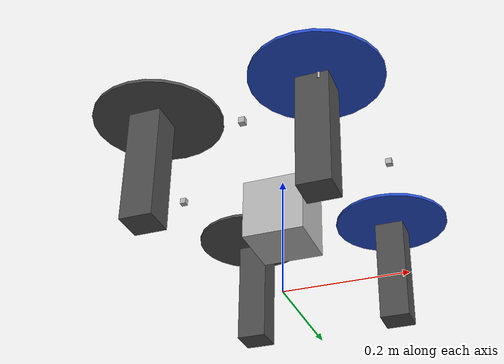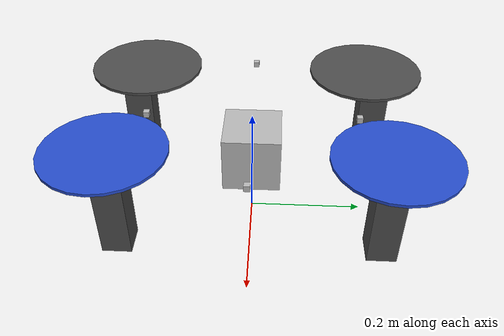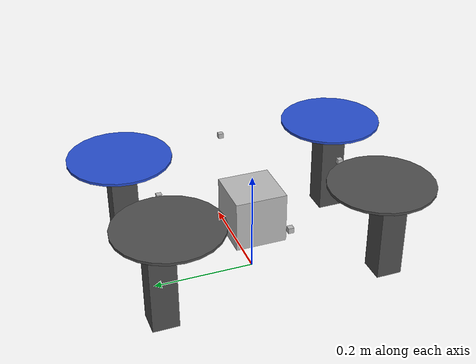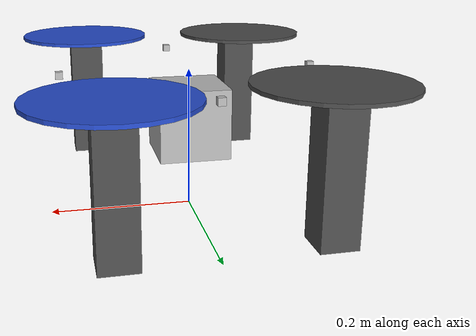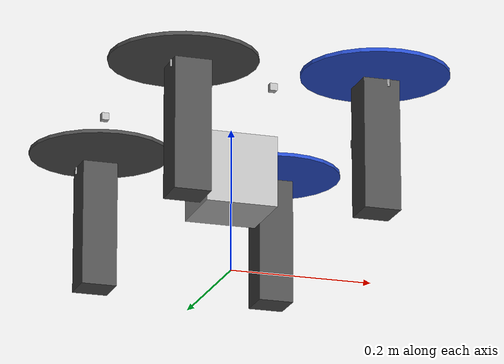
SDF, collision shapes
<?xml version='1.0'?>
	<sdf version="1.6" >
	<model name="drone_artemis">
		<include>
			<uri>model://iris_base</uri>
		</include>

		<!-- Sonar Sensor -->
		<link name="ultrasonic_1">
			<pose>0.18 0 .2 0 0 0</pose>
			<collision name="sonar_collision">
				<geometry>
					<box>
						<size>.01 .01 .01</size>
					</box>
				</geometry>
			</collision>
			<visual name="visual">
				<geometry>
					<box>
						<size>0.01 0.01 0.01</size>
					</box>
				</geometry>
			</visual>
			<inertial>
				<mass>0.1</mass>
				<inertia>
					<ixx>0.001</ixx>
					<ixy>0</ixy>
					<ixz>0</ixz>
					<iyy>0.001</iyy>
					<iyz>0</iyz>
					<izz>0.001</izz>
				</inertia>
			</inertial>
			<sensor type="ray" name="sonar_sensor">
				<visualize>true</visualize>
				<update_rate>10</update_rate>
				<ray>
					<scan>
						<horizontal>
							<samples>10</samples>
							<resolution>1</resolution>
							<min_angle>-0.18326</min_angle>
							<max_angle>0.18326</max_angle>
						</horizontal>
						<vertical>
							<samples>10</samples>
							<resolution>1</resolution>
							<min_angle>-0.034907</min_angle>
							<max_angle>0.034907</max_angle>
						</vertical>
					</scan>
					<range>
						<min>0.02</min>
						<max>4</max>
						<resolution>0.3</resolution>
					</range>
				</ray>
				<plugin filename="libgazebo_ros_range.so" name="gazebo_ros_range">
					<gaussianNoise>0.005</gaussianNoise>
					<alwaysOn>true</alwaysOn>
					<updateRate>50</updateRate>
					<topicName>distance_sensor/1</topicName>
					<frameName>ultrasonic_1</frameName>
					<radiation>ULTRASONIC</radiation>
					<fov>0.366519</fov>
				</plugin>
			</sensor>
		</link>
		<joint type="fixed" name="joint_ultrasonic_1">
			<pose>0 0 0 0 0 0</pose>
			<parent>iris::base_link</parent>
			<child>ultrasonic_1</child>
			<axis>
				<limit>
					<lower>0</lower>
					<upper>0</upper>
				</limit>
				<xyz>0 0 1</xyz>
				<use_parent_model_frame>true</use_parent_model_frame>
			</axis>
		</joint>

			<!-- Sonar Sensor -->
		<link name="ultrasonic_2">
			<pose>0.14 -0.24 .2 0 0 -0.785</pose>
			<collision name="sonar_collision">
				<geometry>
					<box>
						<size>.01 .01 .01</size>
					</box>
				</geometry>
			</collision>
			<visual name="visual">
				<geometry>
					<box>
						<size>0.01 0.01 0.01</size>
					</box>
				</geometry>
			</visual>
			<inertial>
				<mass>0.1</mass>
				<inertia>
					<ixx>0.001</ixx>
					<ixy>0</ixy>
					<ixz>0</ixz>
					<iyy>0.001</iyy>
					<iyz>0</iyz>
					<izz>0.001</izz>
				</inertia>
			</inertial>
			<sensor type="ray" name="sonar_sensor">
				<visualize>true</visualize>
				<update_rate>10</update_rate>
				<ray>
					<scan>
						<horizontal>
							<samples>10</samples>
							<resolution>1</resolution>
							<min_angle>-0.18326</min_angle>
							<max_angle>0.18326</max_angle>
						</horizontal>
						<vertical>
							<samples>10</samples>
							<resolution>1</resolution>
							<min_angle>-0.034907</min_angle>
							<max_angle>0.034907</max_angle>
						</vertical>
					</scan>
					<range>
						<min>0.02</min>
						<max>4</max>
						<resolution>0.3</resolution>
					</range>
				</ray>
				<plugin filename="libgazebo_ros_range.so" name="gazebo_ros_range">
					<gaussianNoise>0.005</gaussianNoise>
					<alwaysOn>true</alwaysOn>
					<updateRate>50</updateRate>
					<topicName>distance_sensor/2</topicName>
					<frameName>ultrasonic_2</frameName>
					<radiation>ULTRASONIC</radiation>
					<fov>0.366519</fov>
				</plugin>
			</sensor>
		</link>
		<joint type="fixed" name="joint_ultrasonic_2">
			<pose>0 0 0 0 0 0</pose>
			<parent>iris::base_link</parent>
			<child>ultrasonic_2</child>
			<axis>
				<limit>
					<lower>0</lower>
					<upper>0</upper>
				</limit>
				<xyz>0 0 1</xyz>
				<use_parent_model_frame>true</use_parent_model_frame>
			</axis>
		</joint>

			<!-- Sonar Sensor -->
		<link name="ultrasonic_3">
			<pose>0 -0.18 .2 0 0 -1.57</pose>
			<collision name="sonar_collision">
				<geometry>
					<box>
						<size>.01 .01 .01</size>
					</box>
				</geometry>
			</collision>
			<visual name="visual">
				<geometry>
					<box>
						<size>0.01 0.01 0.01</size>
					</box>
				</geometry>
			</visual>
			<inertial>
				<mass>0.1</mass>
				<inertia>
					<ixx>0.001</ixx>
					<ixy>0</ixy>
					<ixz>0</ixz>
					<iyy>0.001</iyy>
					<iyz>0</iyz>
					<izz>0.001</izz>
				</inertia>
			</inertial>
			<sensor type="ray" name="sonar_sensor">
				<visualize>true</visualize>
				<update_rate>10</update_rate>
				<ray>
					<scan>
						<horizontal>
							<samples>10</samples>
							<resolution>1</resolution>
							<min_angle>-0.18326</min_angle>
							<max_angle>0.18326</max_angle>
						</horizontal>
						<vertical>
							<samples>10</samples>
							<resolution>1</resolution>
							<min_angle>-0.034907</min_angle>
							<max_angle>0.034907</max_angle>
						</vertical>
					</scan>
					<range>
						<min>0.02</min>
						<max>4</max>
						<resolution>0.3</resolution>
					</range>
				</ray>
				<plugin filename="libgazebo_ros_range.so" name="gazebo_ros_range">
					<gaussianNoise>0.005</gaussianNoise>
					<alwaysOn>true</alwaysOn>
					<updateRate>50</updateRate>
					<topicName>distance_sensor/3</topicName>
					<frameName>ultrasonic_3</frameName>
					<radiation>ULTRASONIC</radiation>
					<fov>0.366519</fov>
				</plugin>
			</sensor>
		</link>
		<joint type="fixed" name="joint_ultrasonic_3">
			<pose>0 0 0 0 0 0</pose>
			<parent>iris::base_link</parent>
			<child>ultrasonic_3</child>
			<axis>
				<limit>
					<lower>0</lower>
					<upper>0</upper>
				</limit>
				<xyz>0 0 1</xyz>
				<use_parent_model_frame>true</use_parent_model_frame>
			</axis>
		</joint>

			<!-- Sonar Sensor -->
		<link name="ultrasonic_4">
			<pose>-0.15 -0.23 .2 0 0 -2.355</pose>
			<collision name="sonar_collision">
				<geometry>
					<box>
						<size>.01 .01 .01</size>
					</box>
				</geometry>
			</collision>
			<visual name="visual">
				<geometry>
					<box>
						<size>0.01 0.01 0.01</size>
					</box>
				</geometry>
			</visual>
			<inertial>
				<mass>0.1</mass>
				<inertia>
					<ixx>0.001</ixx>
					<ixy>0</ixy>
					<ixz>0</ixz>
					<iyy>0.001</iyy>
					<iyz>0</iyz>
					<izz>0.001</izz>
				</inertia>
			</inertial>
			<sensor type="ray" name="sonar_sensor">
				<visualize>true</visualize>
				<update_rate>10</update_rate>
				<ray>
					<scan>
						<horizontal>
							<samples>10</samples>
							<resolution>1</resolution>
							<min_angle>-0.18326</min_angle>
							<max_angle>0.18326</max_angle>
						</horizontal>
						<vertical>
							<samples>10</samples>
							<resolution>1</resolution>
							<min_angle>-0.034907</min_angle>
							<max_angle>0.034907</max_angle>
						</vertical>
					</scan>
					<range>
						<min>0.02</min>
						<max>4</max>
						<resolution>0.3</resolution>
					</range>
				</ray>
				<plugin filename="libgazebo_ros_range.so" name="gazebo_ros_range">
					<gaussianNoise>0.005</gaussianNoise>
					<alwaysOn>true</alwaysOn>
					<updateRate>50</updateRate>
					<topicName>distance_sensor/4</topicName>
					<frameName>ultrasonic_4</frameName>
					<radiation>ULTRASONIC</radiation>
					<fov>0.366519</fov>
				</plugin>
			</sensor>
		</link>
		<joint type="fixed" name="joint_ultrasonic_4">
			<pose>0 0 0 0 0 0</pose>
			<parent>iris::base_link</parent>
			<child>ultrasonic_4</child>
			<axis>
				<limit>
					<lower>0</lower>
					<upper>0</upper>
				</limit>
				<xyz>0 0 1</xyz>
				<use_parent_model_frame>true</use_parent_model_frame>
			</axis>
		</joint>

			<!-- Sonar Sensor -->
		<link name="ultrasonic_5">
			<pose>-0.18 0 0.2 0 0 3.14</pose>
			<collision name="sonar_collision">
				<geometry>
					<box>
						<size>.01 .01 .01</size>
					</box>
				</geometry>
			</collision>
			<visual name="visual">
				<geometry>
					<box>
						<size>0.01 0.01 0.01</size>
					</box>
				</geometry>
			</visual>
			<inertial>
				<mass>0.1</mass>
				<inertia>
					<ixx>0.001</ixx>
					<ixy>0</ixy>
					<ixz>0</ixz>
					<iyy>0.001</iyy>
					<iyz>0</iyz>
					<izz>0.001</izz>
				</inertia>
			</inertial>
			<sensor type="ray" name="sonar_sensor">
				<visualize>true</visualize>
				<update_rate>10</update_rate>
				<ray>
					<scan>
						<horizontal>
							<samples>10</samples>
							<resolution>1</resolution>
							<min_angle>-0.18326</min_angle>
							<max_angle>0.18326</max_angle>
						</horizontal>
						<vertical>
							<samples>10</samples>
							<resolution>1</resolution>
							<min_angle>-0.034907</min_angle>
							<max_angle>0.034907</max_angle>
						</vertical>
					</scan>
					<range>
						<min>0.02</min>
						<max>4</max>
						<resolution>0.3</resolution>
					</range>
				</ray>
				<plugin filename="libgazebo_ros_range.so" name="gazebo_ros_range">
					<gaussianNoise>0.005</gaussianNoise>
					<alwaysOn>true</alwaysOn>
					<updateRate>50</updateRate>
					<topicName>distance_sensor/5</topicName>
					<frameName>ultrasonic_5</frameName>
					<radiation>ULTRASONIC</radiation>
					<fov>0.366519</fov>
				</plugin>
			</sensor>
		</link>
		<joint type="fixed" name="joint_ultrasonic_5">
			<pose>0 0 0 0 0 0</pose>
			<parent>iris::base_link</parent>
			<child>ultrasonic_5</child>
			<axis>
				<limit>
					<lower>0</lower>
					<upper>0</upper>
				</limit>
				<xyz>0 0 1</xyz>
				<use_parent_model_frame>true</use_parent_model_frame>
			</axis>
		</joint>

			<!-- Sonar Sensor -->
		<link name="ultrasonic_6">
			<pose>-0.15 0.23 .2 0 0 2.355</pose>
			<collision name="sonar_collision">
				<geometry>
					<box>
						<size>.01 .01 .01</size>
					</box>
				</geometry>
			</collision>
			<visual name="visual">
				<geometry>
					<box>
						<size>0.01 0.01 0.01</size>
					</box>
				</geometry>
			</visual>
			<inertial>
				<mass>0.1</mass>
				<inertia>
					<ixx>0.001</ixx>
					<ixy>0</ixy>
					<ixz>0</ixz>
					<iyy>0.001</iyy>
					<iyz>0</iyz>
					<izz>0.001</izz>
				</inertia>
			</inertial>
			<sensor type="ray" name="sonar_sensor">
				<visualize>true</visualize>
				<update_rate>10</update_rate>
				<ray>
					<scan>
						<horizontal>
							<samples>10</samples>
							<resolution>1</resolution>
							<min_angle>-0.18326</min_angle>
							<max_angle>0.18326</max_angle>
						</horizontal>
						<vertical>
							<samples>10</samples>
							<resolution>1</resolution>
							<min_angle>-0.034907</min_angle>
							<max_angle>0.034907</max_angle>
						</vertical>
					</scan>
					<range>
						<min>0.02</min>
						<max>4</max>
						<resolution>0.3</resolution>
					</range>
				</ray>
				<plugin filename="libgazebo_ros_range.so" name="gazebo_ros_range">
					<gaussianNoise>0.005</gaussianNoise>
					<alwaysOn>true</alwaysOn>
					<updateRate>50</updateRate>
					<topicName>distance_sensor/6</topicName>
					<frameName>ultrasonic_6</frameName>
					<radiation>ULTRASONIC</radiation>
					<fov>0.366519</fov>
				</plugin>
			</sensor>
		</link>
		<joint type="fixed" name="joint_ultrasonic_6">
			<pose>0 0 0 0 0 0</pose>
			<parent>iris::base_link</parent>
			<child>ultrasonic_6</child>
			<axis>
				<limit>
					<lower>0</lower>
					<upper>0</upper>
				</limit>
				<xyz>0 0 1</xyz>
				<use_parent_model_frame>true</use_parent_model_frame>
			</axis>
		</joint>

			<!-- Sonar Sensor -->
		<link name="ultrasonic_7">
			<pose>0 0.18 .2 0 0 1.57</pose>
			<collision name="sonar_collision">
				<geometry>
					<box>
						<size>.01 .01 .01</size>
					</box>
				</geometry>
			</collision>
			<visual name="visual">
				<geometry>
					<box>
						<size>0.01 0.01 0.01</size>
					</box>
				</geometry>
			</visual>
			<inertial>
				<mass>0.1</mass>
				<inertia>
					<ixx>0.001</ixx>
					<ixy>0</ixy>
					<ixz>0</ixz>
					<iyy>0.001</iyy>
					<iyz>0</iyz>
					<izz>0.001</izz>
				</inertia>
			</inertial>
			<sensor type="ray" name="sonar_sensor">
				<visualize>true</visualize>
				<update_rate>10</update_rate>
				<ray>
					<scan>
						<horizontal>
							<samples>10</samples>
							<resolution>1</resolution>
							<min_angle>-0.18326</min_angle>
							<max_angle>0.18326</max_angle>
						</horizontal>
						<vertical>
							<samples>10</samples>
							<resolution>1</resolution>
							<min_angle>-0.034907</min_angle>
							<max_angle>0.034907</max_angle>
						</vertical>
					</scan>
					<range>
						<min>0.02</min>
						<max>4</max>
						<resolution>0.3</resolution>
					</range>
				</ray>
				<plugin filename="libgazebo_ros_range.so" name="gazebo_ros_range">
					<gaussianNoise>0.005</gaussianNoise>
					<alwaysOn>true</alwaysOn>
					<updateRate>50</updateRate>
					<topicName>distance_sensor/7</topicName>
					<frameName>ultrasonic_7</frameName>
					<radiation>ULTRASONIC</radiation>
					<fov>0.366519</fov>
				</plugin>
			</sensor>
		</link>
		<joint type="fixed" name="joint_ultrasonic_7">
			<pose>0 0 0 0 0 0</pose>
			<parent>iris::base_link</parent>
			<child>ultrasonic_7</child>
			<axis>
				<limit>
					<lower>0</lower>
					<upper>0</upper>
				</limit>
				<xyz>0 0 1</xyz>
				<use_parent_model_frame>true</use_parent_model_frame>
			</axis>
		</joint>

			<!-- Sonar Sensor -->
		<link name="ultrasonic_8">
			<pose>0.14 0.24 .2 0 0 0.785</pose>
			<collision name="sonar_collision">
				<geometry>
					<box>
						<size>.01 .01 .01</size>
					</box>
				</geometry>
			</collision>
			<visual name="visual">
				<geometry>
					<box>
						<size>0.01 0.01 0.01</size>
					</box>
				</geometry>
			</visual>
			<inertial>
				<mass>0.1</mass>
				<inertia>
					<ixx>0.001</ixx>
					<ixy>0</ixy>
					<ixz>0</ixz>
					<iyy>0.001</iyy>
					<iyz>0</iyz>
					<izz>0.001</izz>
				</inertia>
			</inertial>
			<sensor type="ray" name="sonar_sensor">
				<visualize>true</visualize>
				<update_rate>10</update_rate>
				<ray>
					<scan>
						<horizontal>
							<samples>10</samples>
							<resolution>1</resolution>
							<min_angle>-0.18326</min_angle>
							<max_angle>0.18326</max_angle>
						</horizontal>
						<vertical>
							<samples>10</samples>
							<resolution>1</resolution>
							<min_angle>-0.034907</min_angle>
							<max_angle>0.034907</max_angle>
						</vertical>
					</scan>
					<range>
						<min>0.02</min>
						<max>4</max>
						<resolution>0.3</resolution>
					</range>
				</ray>
				<plugin filename="libgazebo_ros_range.so" name="gazebo_ros_range">
						<gaussianNoise>0.005</gaussianNoise>
						<alwaysOn>true</alwaysOn>
						<updateRate>50</updateRate>
						<topicName>distance_sensor/8</topicName>
						<frameName>ultrasonic_8</frameName>
						<radiation>ULTRASONIC</radiation>
						<fov>0.366519</fov>
				</plugin>
			</sensor>
		</link>
		<joint type="fixed" name="joint_ultrasonic_8">
			<pose>0 0 0 0 0 0</pose>
			<parent>iris::base_link</parent>
			<child>ultrasonic_8</child>
			<axis>
				<limit>
					<lower>0</lower>
					<upper>0</upper>
				</limit>
				<xyz>0 0 1</xyz>
				<use_parent_model_frame>true</use_parent_model_frame>
			</axis>
		</joint>

			<!--RGB Camera-->
		<link name="rgb_camera">
			<pose>0.1 0 0.15 0 0.785 0 </pose>
			<visual name="visual">
				<geometry>
					<box>
						<size>0.01 0.01 0.01</size>
					</box>
				</geometry>
			</visual>
			<inertial>
				<mass>0.1</mass>
				<inertia>
					<ixx>0.001</ixx>
					<ixy>0</ixy>
					<ixz>0</ixz>
					<iyy>0.001</iyy>
					<iyz>0</iyz>
					<izz>0.001</izz>
				</inertia>
			</inertial>
			<sensor name="rgb_cam" type="camera" >
				<camera>
					<horizontal_fov>1.2</horizontal_fov>
					<image>
						<width>640</width>
						<height>480</height>
					</image>
					<clip>
						<near>0.1</near>
						<far>1000</far>
					</clip>
				</camera>
				<always_on>1</always_on>
				<update_rate>30</update_rate>
				<visualize>true</visualize>
				<plugin name="camera_controller" filename="libgazebo_ros_camera.so">
					<always_on>true</always_on>
					<update_rate>30</update_rate>
					<cameraName>rgb_cam</cameraName>
					<imageTopicName>image_raw</imageTopicName>
					<cameraInfoTopicName>rgb_camera_info</cameraInfoTopicName>
					<frameName>rgb_camera_link</frameName>
				</plugin>
			</sensor>
		</link>
		<joint name="camera_mount" type="fixed">
			<pose>0 0 0 0 0 0</pose>
			<parent>iris::base_link</parent>
			<child>rgb_camera</child>
			<axis>
				<limit>
					<lower>0</lower>
					<upper>0</upper>
				</limit>
				<xyz>0 0 1</xyz>
				<use_parent_model_frame>true</use_parent_model_frame>
			</axis>
		</joint>

		<!-- Stereo camera -->
		<link name='stereo_camera'>
			<pose>0.1 0 .3 0 0 0</pose>
			<visual name="visual">
				<geometry>
					<box>
						<size>0.01 0.07 0.01</size>
					</box>
				</geometry>
			</visual>
			<inertial>
				<mass>0.1</mass>
				<inertia>
					<ixx>0.001</ixx>
					<ixy>0</ixy>
					<ixz>0</ixz>
					<iyy>0.001</iyy>
					<iyz>0</iyz>
					<izz>0.001</izz>
				</inertia>
			</inertial>
			<sensor type="multicamera" name="stereo_camera">
				<update_rate>30.0</update_rate>
				<camera name="left">
					<pose>0 0.035 0 0 0 0</pose>
					<horizontal_fov>1.3962634</horizontal_fov>
					<image>
						<width>640</width>
						<height>480</height>
						<format>R8G8B8</format>
					</image>
					<clip>
						<near>0.02</near>
						<far>300</far>
					</clip>
				</camera>
				<camera name="right">
					<pose>0 -0.035 0 0 0 0</pose>
					<horizontal_fov>1.3962634</horizontal_fov>
					<image>
						<width>640</width>
						<height>480</height>
						<format>R8G8B8</format>
					</image>
					<clip>
						<near>0.02</near>
						<far>300</far>
					</clip>
				</camera>
				<plugin name="stereo_camera_controller" filename="libgazebo_ros_multicamera.so">
					<alwaysOn>true</alwaysOn>
					<updateRate>0.0</updateRate>
					<cameraName>multisense_sl/camera</cameraName>
					<imageTopicName>image_raw</imageTopicName>
					<cameraInfoTopicName>camera_info</cameraInfoTopicName>
					<frameName>left_camera_optical_frame</frameName>
				</plugin>
			</sensor>
		</link>
		<joint name="stereo_camera_joint" type="fixed">
			<pose>0 0 0 0 0 0</pose>
			<parent>iris::base_link</parent>
			<child>stereo_camera</child>
			<axis>
				<limit>
					<lower>0</lower>
					<upper>0</upper>
				</limit>
				<xyz>0 0 1</xyz>
				<use_parent_model_frame>true</use_parent_model_frame>
			</axis>
		</joint>

		<!--Lidar-->
		<link name="lidar_link">
			<pose>0 0 0.13 0 1.57 0</pose>
			<collision name="lidar_collision">
				<geometry>
					<box>
						<size>0.1 0.1 0.1</size>
					</box>
				</geometry>
			</collision>
			<visual name="visual">
				<geometry>
					<box>
						<size>0.01 0.01 0.01</size>
					</box>
				</geometry>
			</visual>
			<inertial>
				<mass>0.1</mass>
				<inertia>
					<ixx>0.001</ixx>
					<ixy>0</ixy>
					<ixz>0</ixz>
					<iyy>0.001</iyy>
					<iyz>0</iyz>
					<izz>0.001</izz>
				</inertia>
			</inertial>
			<sensor type="ray" name="laser">
				<visualize>true</visualize>
				<update_rate>10</update_rate>
				<ray>
					<scan>
						<horizontal>
							<samples>1</samples>
							<resolution>1</resolution>
							<min_angle>-0.017453</min_angle>
							<max_angle>0.017453</max_angle>
						</horizontal>
					</scan>
					<range>
						<min>0.1</min>
						<max>8</max>
						<resolution>0.01</resolution>
					</range>
				</ray>
				<plugin name="lidar_node" filename="libgazebo_ros_laser.so">
					<topicName>/spur/laser/scan</topicName>
					<frameName>/lidar_sensor_link</frameName>
				</plugin>
			</sensor>
		</link>
		<joint type="fixed" name="lidar_joint">
			<pose>0 0 0 0 0 0</pose>
			<parent>iris::base_link</parent>
			<child>lidar_link</child>
			<axis>
				<limit>
					<lower>0</lower>
					<upper>0</upper>
				</limit>
				<xyz>0 0 1</xyz>
				<use_parent_model_frame>true</use_parent_model_frame>
			</axis>
		</joint>

		<!-- plugins -->
		<plugin name="rotor_0_blade_1" filename="libLiftDragPlugin.so">
		<a0>0.3</a0>
		<alpha_stall>1.4</alpha_stall>
		<cla>4.2500</cla>
		<cda>0.10</cda>
		<cma>0.00</cma>
		<cla_stall>-0.025</cla_stall>
		<cda_stall>0.0</cda_stall>
		<cma_stall>0.0</cma_stall>
		<area>0.002</area>
		<air_density>1.2041</air_density>
		<cp>0.084 0 0</cp>
		<forward>0 1 0</forward>
		<upward>0 0 1</upward>
		<link_name>iris::rotor_0</link_name>
		</plugin>
		<plugin name="rotor_0_blade_2" filename="libLiftDragPlugin.so">
		<a0>0.3</a0>
		<alpha_stall>1.4</alpha_stall>
		<cla>4.2500</cla>
		<cda>0.10</cda>
		<cma>0.00</cma>
		<cla_stall>-0.025</cla_stall>
		<cda_stall>0.0</cda_stall>
		<cma_stall>0.0</cma_stall>
		<area>0.002</area>
		<air_density>1.2041</air_density>
		<cp>-0.084 0 0</cp>
		<forward>0 -1 0</forward>
		<upward>0 0 1</upward>
		<link_name>iris::rotor_0</link_name>
		</plugin>

		<plugin name="rotor_1_blade_1" filename="libLiftDragPlugin.so">
		<a0>0.3</a0>
		<alpha_stall>1.4</alpha_stall>
		<cla>4.2500</cla>
		<cda>0.10</cda>
		<cma>0.00</cma>
		<cla_stall>-0.025</cla_stall>
		<cda_stall>0.0</cda_stall>
		<cma_stall>0.0</cma_stall>
		<area>0.002</area>
		<air_density>1.2041</air_density>
		<cp>0.084 0 0</cp>
		<forward>0 1 0</forward>
		<upward>0 0 1</upward>
		<link_name>iris::rotor_1</link_name>
		</plugin>
		<plugin name="rotor_1_blade_2" filename="libLiftDragPlugin.so">
		<a0>0.3</a0>
		<alpha_stall>1.4</alpha_stall>
		<cla>4.2500</cla>
		<cda>0.10</cda>
		<cma>0.00</cma>
		<cla_stall>-0.025</cla_stall>
		<cda_stall>0.0</cda_stall>
		<cma_stall>0.0</cma_stall>
		<area>0.002</area>
		<air_density>1.2041</air_density>
		<cp>-0.084 0 0</cp>
		<forward>0 -1 0</forward>
		<upward>0 0 1</upward>
		<link_name>iris::rotor_1</link_name>
		</plugin>

		<plugin name="rotor_2_blade_1" filename="libLiftDragPlugin.so">
		<a0>0.3</a0>
		<alpha_stall>1.4</alpha_stall>
		<cla>4.2500</cla>
		<cda>0.10</cda>
		<cma>0.00</cma>
		<cla_stall>-0.025</cla_stall>
		<cda_stall>0.0</cda_stall>
		<cma_stall>0.0</cma_stall>
		<area>0.002</area>
		<air_density>1.2041</air_density>
		<cp>0.084 0 0</cp>
		<forward>0 -1 0</forward>
		<upward>0 0 1</upward>
		<link_name>iris::rotor_2</link_name>
		</plugin>
		<plugin name="rotor_2_blade_2" filename="libLiftDragPlugin.so">
		<a0>0.3</a0>
		<alpha_stall>1.4</alpha_stall>
		<cla>4.2500</cla>
		<cda>0.10</cda>
		<cma>0.00</cma>
		<cla_stall>-0.025</cla_stall>
		<cda_stall>0.0</cda_stall>
		<cma_stall>0.0</cma_stall>
		<area>0.002</area>
		<air_density>1.2041</air_density>
		<cp>-0.084 0 0</cp>
		<forward>0 1 0</forward>
		<upward>0 0 1</upward>
		<link_name>iris::rotor_2</link_name>
		</plugin>

		<plugin name="rotor_3_blade_1" filename="libLiftDragPlugin.so">
		<a0>0.3</a0>
		<alpha_stall>1.4</alpha_stall>
		<cla>4.2500</cla>
		<cda>0.10</cda>
		<cma>0.00</cma>
		<cla_stall>-0.025</cla_stall>
		<cda_stall>0.0</cda_stall>
		<cma_stall>0.0</cma_stall>
		<area>0.002</area>
		<air_density>1.2041</air_density>
		<cp>0.084 0 0</cp>
		<forward>0 -1 0</forward>
		<upward>0 0 1</upward>
		<link_name>iris::rotor_3</link_name>
		</plugin>
		<plugin name="rotor_3_blade_2" filename="libLiftDragPlugin.so">
		<a0>0.3</a0>
		<alpha_stall>1.4</alpha_stall>
		<cla>4.2500</cla>
		<cda>0.10</cda>
		<cma>0.00</cma>
		<cla_stall>-0.025</cla_stall>
		<cda_stall>0.0</cda_stall>
		<cma_stall>0.0</cma_stall>
		<area>0.002</area>
		<air_density>1.2041</air_density>
		<cp>-0.084 0 0</cp>
		<forward>0 1 0</forward>
		<upward>0 0 1</upward>
		<link_name>iris::rotor_3</link_name>
		</plugin>
		<plugin name="arducopter_plugin" filename="libArduPilotPlugin.so">
		<fdm_addr>127.0.0.1</fdm_addr>
		<fdm_port_in>9002</fdm_port_in>
		<fdm_port_out>9003</fdm_port_out>
		<!--
			Require by APM :
			Only change model and gazebo from XYZ to XY-Z coordinates
		-->
		<modelXYZToAirplaneXForwardZDown>0 0 0 3.141593 0 0</modelXYZToAirplaneXForwardZDown>
		<gazeboXYZToNED>0 0 0 3.141593 0 0</gazeboXYZToNED>
		<imuName>iris::iris/imu_link::imu_sensor</imuName>
		<connectionTimeoutMaxCount>5</connectionTimeoutMaxCount>
		<control channel="0">
		<!--
			incoming control command [0, 1]
			so offset it by 0 to get [0, 1]
			and divide max target by 1.
			offset = 0
			multiplier = 838 max rpm / 1 = 838
			-->
			<type>VELOCITY</type>
			<offset>0</offset>
			<p_gain>0.20</p_gain>
			<i_gain>0</i_gain>
			<d_gain>0</d_gain>
			<i_max>0</i_max>
			<i_min>0</i_min>
			<cmd_max>2.5</cmd_max>
			<cmd_min>-2.5</cmd_min>
			<jointName>iris::rotor_0_joint</jointName>
			<multiplier>838</multiplier>
			<controlVelocitySlowdownSim>1</controlVelocitySlowdownSim>
		</control>
		<control channel="1">
			<type>VELOCITY</type>
			<offset>0</offset>
			<p_gain>0.20</p_gain>
			<i_gain>0</i_gain>
			<d_gain>0</d_gain>
			<i_max>0</i_max>
			<i_min>0</i_min>
			<cmd_max>2.5</cmd_max>
			<cmd_min>-2.5</cmd_min>
			<jointName>iris::rotor_1_joint</jointName>
			<multiplier>838</multiplier>
			<controlVelocitySlowdownSim>1</controlVelocitySlowdownSim>
		</control>
		<control channel="2">
			<type>VELOCITY</type>
			<offset>0</offset>
			<p_gain>0.20</p_gain>
			<i_gain>0</i_gain>
			<d_gain>0</d_gain>
			<i_max>0</i_max>
			<i_min>0</i_min>
			<cmd_max>2.5</cmd_max>
			<cmd_min>-2.5</cmd_min>
			<jointName>iris::rotor_2_joint</jointName>
			<multiplier>-838</multiplier>
			<controlVelocitySlowdownSim>1</controlVelocitySlowdownSim>
		</control>
		<control channel="3">
			<type>VELOCITY</type>
			<offset>0</offset>
			<p_gain>0.20</p_gain>
			<i_gain>0</i_gain>
			<d_gain>0</d_gain>
			<i_max>0</i_max>
			<i_min>0</i_min>
			<cmd_max>2.5</cmd_max>
			<cmd_min>-2.5</cmd_min>
			<jointName>iris::rotor_3_joint</jointName>
			<multiplier>-838</multiplier>
			<controlVelocitySlowdownSim>1</controlVelocitySlowdownSim>
		</control>
		</plugin>

	</model>
</sdf>

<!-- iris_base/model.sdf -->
<sdf version='1.6'>
  <model name='iris'>
    <pose>0 0 0.194923 0 0 0</pose>
    <link name='base_link'>
      <velocity_decay>
        <linear>0.0</linear>
        <angular>0.0</angular>
      </velocity_decay>
      <inertial>
        <pose>0 0 0 0 0 0</pose>
        <mass>1.5</mass>
        <inertia>
          <ixx>0.008</ixx>
          <ixy>0</ixy>
          <ixz>0</ixz>
          <iyy>0.015</iyy>
          <iyz>0</iyz>
          <izz>0.017</izz>
        </inertia>
      </inertial>
      <collision name='base_link_collision_fl'>
        <pose>0.13 0.22 -0.08 0 0 0</pose>
        <geometry>
          <box>
            <size>0.05 0.05 0.18</size>
          </box>
        </geometry>
        <surface>
          <contact>
            <ode>
              <max_vel>100.0</max_vel>
              <min_depth>0.001</min_depth>
            </ode>
          </contact>
          <friction>
            <ode>
              <mu>1.0</mu>
              <mu2>1.0</mu2>
            </ode>
          </friction>
        </surface>
      </collision>
      <collision name='base_link_collision_fr'>
        <pose>0.13 -0.22 -0.08 0 0 0</pose>
        <geometry>
          <box>
            <size>0.05 0.05 0.18</size>
          </box>
        </geometry>
        <surface>
          <contact>
            <ode>
              <max_vel>100.0</max_vel>
              <min_depth>0.001</min_depth>
            </ode>
          </contact>
          <friction>
            <ode>
              <mu>1.0</mu>
              <mu2>1.0</mu2>
            </ode>
          </friction>
        </surface>
      </collision>
      <collision name='base_link_collision_br'>
        <pose>-0.13 -0.22 -0.08 0 0 0</pose>
        <geometry>
          <box>
            <size>0.05 0.05 0.18</size>
          </box>
        </geometry>
        <surface>
          <contact>
            <ode>
              <max_vel>100.0</max_vel>
              <min_depth>0.001</min_depth>
            </ode>
          </contact>
          <friction>
            <ode>
              <mu>1.0</mu>
              <mu2>1.0</mu2>
            </ode>
          </friction>
        </surface>
      </collision>
      <collision name='base_link_collision_bl'>
        <pose>-0.13 0.22 -0.08 0 0 0</pose>
        <geometry>
          <box>
            <size>0.05 0.05 0.18</size>
          </box>
        </geometry>
        <surface>
          <contact>
            <ode>
              <max_vel>100.0</max_vel>
              <min_depth>0.001</min_depth>
            </ode>
          </contact>
          <friction>
            <ode>
              <mu>1.0</mu>
              <mu2>1.0</mu2>
            </ode>
          </friction>
        </surface>
      </collision>
      <visual name='base_link_visual'>
        <geometry>
          <mesh>
            <uri>model://iris_base/meshes/iris.dae</uri>
          </mesh>
        </geometry>
        <material>
          <script>
            <name>Gazebo/DarkGrey</name>
          </script>
        </material>
      </visual>

      <visual name='front_left_leg_visual'>
        <pose>0.123 0.22 -0.11 0 0 0</pose>
        <geometry>
          <cylinder>
            <radius>0.005</radius>
            <length>0.17</length>
          </cylinder>
        </geometry>
        <material>
          <script>
            <name>Gazebo/FlatBlack</name>
            <uri>file://media/materials/scripts/gazebo.material</uri>
          </script>
        </material>
      </visual>
      <visual name='front_right_leg_visual'>
        <pose>0.123 -0.22 -0.11 0 0 0</pose>
        <geometry>
          <cylinder>
            <radius>0.005</radius>
            <length>0.17</length>
          </cylinder>
        </geometry>
        <material>
          <script>
            <name>Gazebo/FlatBlack</name>
            <uri>file://media/materials/scripts/gazebo.material</uri>
          </script>
        </material>
      </visual>
      <visual name='rear_left_leg_visual'>
        <pose>-0.140 0.21 -0.11 0 0 0</pose>
        <geometry>
          <cylinder>
            <radius>0.005</radius>
            <length>0.17</length>
          </cylinder>
        </geometry>
        <material>
          <script>
            <name>Gazebo/FlatBlack</name>
            <uri>file://media/materials/scripts/gazebo.material</uri>
          </script>
        </material>
      </visual>
      <visual name='rear_right_leg_visual'>
        <pose>-0.140 -0.21 -0.11 0 0 0</pose>
        <geometry>
          <cylinder>
            <radius>0.005</radius>
            <length>0.17</length>
          </cylinder>
        </geometry>
        <material>
          <script>
            <name>Gazebo/FlatBlack</name>
            <uri>file://media/materials/scripts/gazebo.material</uri>
          </script>
        </material>
      </visual>
    </link>
    <link name='iris/ground_truth/odometry_sensorgt_link'>
      <pose>0 0 0 0 -0 0</pose>
      <inertial>
        <pose>0 0 0 0 -0 0</pose>
        <mass>0.15</mass>
        <inertia>
          <ixx>0.0001</ixx>
          <ixy>0</ixy>
          <ixz>0</ixz>
          <iyy>0.0002</iyy>
          <iyz>0</iyz>
          <izz>0.0002</izz>
        </inertia>
      </inertial>
    </link>
    <joint name='iris/ground_truth/odometry_sensorgt_joint' type='revolute'>
      <child>iris/ground_truth/odometry_sensorgt_link</child>
      <parent>base_link</parent>
      <axis>
        <xyz>0 0 1</xyz>
        <limit>
          <lower>0</lower>
          <upper>0</upper>
          <effort>0</effort>
          <velocity>0</velocity>
        </limit>
        <dynamics>
          <damping>1.0</damping>
        </dynamics>
        <use_parent_model_frame>1</use_parent_model_frame>
      </axis>
      <physics>
        <ode>
          <implicit_spring_damper>1</implicit_spring_damper>
        </ode>
      </physics>
    </joint>
    <link name='iris/imu_link'>
      <inertial>
        <pose>0 0 0 0 0 0</pose>
        <mass>0.15</mass>
        <inertia>
          <ixx>0.00001</ixx>
          <ixy>0</ixy>
          <ixz>0</ixz>
          <iyy>0.00002</iyy>
          <iyz>0</iyz>
          <izz>0.00002</izz>
        </inertia>
      </inertial>
      <sensor name="imu_sensor" type="imu">
        <pose>0 0 0 3.141593 0 0</pose>
        <always_on>1</always_on>
        <update_rate>1000.0</update_rate>
      </sensor>
    </link>
    <joint name='iris/imu_joint' type='revolute'>
      <child>iris/imu_link</child>
      <parent>base_link</parent>
      <axis>
        <xyz>0 0 1</xyz>
        <limit>
          <lower>0</lower>
          <upper>0</upper>
          <effort>0</effort>
          <velocity>0</velocity>
        </limit>
        <dynamics>
          <damping>1.0</damping>
        </dynamics>
        <use_parent_model_frame>1</use_parent_model_frame>
      </axis>
      <physics>
        <ode>
          <implicit_spring_damper>1</implicit_spring_damper>
        </ode>
      </physics>
    </joint>
    <link name='rotor_0'>
      <pose>0.13 -0.22 0.023 0 -0 0</pose>
      <inertial>
        <pose>0 0 0 0 -0 0</pose>
        <mass>0.025</mass>
        <inertia>
          <ixx>9.75e-06</ixx>
          <ixy>0</ixy>
          <ixz>0</ixz>
          <iyy>0.000166704</iyy>
          <iyz>0</iyz>
          <izz>0.000167604</izz>
        </inertia>
      </inertial>
      <collision name='rotor_0_collision'>
        <pose>0 0 0 0 -0 0</pose>
        <geometry>
          <cylinder>
            <length>0.005</length>
            <radius>0.1</radius>
          </cylinder>
        </geometry>
        <surface>
          <contact>
            <ode/>
          </contact>
          <friction>
            <ode/>
          </friction>
        </surface>
      </collision>
      <visual name='rotor_0_visual'>
        <pose>0 0 0 0 -0 0</pose>
        <geometry>
          <mesh>
            <scale>1 1 1</scale>
            <uri>model://iris_base/meshes/iris_prop_ccw.dae</uri>
          </mesh>
        </geometry>
        <material>
          <script>
            <name>Gazebo/Blue</name>
            <uri>__default__</uri>
          </script>
        </material>
      </visual>
      <gravity>1</gravity>
      <velocity_decay/>
      <self_collide>0</self_collide>
    </link>
    <joint name='rotor_0_joint' type='revolute'>
      <child>rotor_0</child>
      <parent>base_link</parent>
      <axis>
        <xyz>0 0 1</xyz>
        <limit>
          <lower>-1e+16</lower>
          <upper>1e+16</upper>
        </limit>
        <dynamics>
          <damping>0.004</damping>
        </dynamics>
        <use_parent_model_frame>1</use_parent_model_frame>
      </axis>
      <physics>
        <ode>
          <implicit_spring_damper>1</implicit_spring_damper>
        </ode>
      </physics>
    </joint>
    <link name='rotor_1'>
      <pose>-0.13 0.2 0.023 0 -0 0</pose>
      <inertial>
        <pose>0 0 0 0 -0 0</pose>
        <mass>0.025</mass>
        <inertia>
          <ixx>9.75e-06</ixx>
          <ixy>0</ixy>
          <ixz>0</ixz>
          <iyy>0.000166704</iyy>
          <iyz>0</iyz>
          <izz>0.000167604</izz>
        </inertia>
      </inertial>
      <collision name='rotor_1_collision'>
        <pose>0 0 0 0 -0 0</pose>
        <geometry>
          <cylinder>
            <length>0.005</length>
            <radius>0.1</radius>
          </cylinder>
        </geometry>
        <surface>
          <contact>
            <ode/>
          </contact>
          <friction>
            <ode/>
          </friction>
        </surface>
      </collision>
      <visual name='rotor_1_visual'>
        <pose>0 0 0 0 -0 0</pose>
        <geometry>
          <mesh>
            <scale>1 1 1</scale>
            <uri>model://iris_base/meshes/iris_prop_ccw.dae</uri>
          </mesh>
        </geometry>
        <material>
          <script>
            <name>Gazebo/DarkGrey</name>
            <uri>__default__</uri>
          </script>
        </material>
      </visual>
      <gravity>1</gravity>
      <velocity_decay/>
      <self_collide>0</self_collide>
    </link>
    <joint name='rotor_1_joint' type='revolute'>
      <child>rotor_1</child>
      <parent>base_link</parent>
      <axis>
        <xyz>0 0 1</xyz>
        <limit>
          <lower>-1e+16</lower>
          <upper>1e+16</upper>
        </limit>
        <dynamics>
          <damping>0.004</damping>
        </dynamics>
        <use_parent_model_frame>1</use_parent_model_frame>
      </axis>
      <physics>
        <ode>
          <implicit_spring_damper>1</implicit_spring_damper>
        </ode>
      </physics>
    </joint>
    <link name='rotor_2'>
      <pose>0.13 0.22 0.023 0 -0 0</pose>
      <inertial>
        <pose>0 0 0 0 -0 0</pose>
        <mass>0.025</mass>
        <inertia>
          <ixx>9.75e-06</ixx>
          <ixy>0</ixy>
          <ixz>0</ixz>
          <iyy>0.000166704</iyy>
          <iyz>0</iyz>
          <izz>0.000167604</izz>
        </inertia>
      </inertial>
      <collision name='rotor_2_collision'>
        <pose>0 0 0 0 -0 0</pose>
        <geometry>
          <cylinder>
            <length>0.005</length>
            <radius>0.1</radius>
          </cylinder>
        </geometry>
        <surface>
          <contact>
            <ode/>
          </contact>
          <friction>
            <ode/>
          </friction>
        </surface>
      </collision>
      <visual name='rotor_2_visual'>
        <pose>0 0 0 0 -0 0</pose>
        <geometry>
          <mesh>
            <scale>1 1 1</scale>
            <uri>model://iris_base/meshes/iris_prop_cw.dae</uri>
          </mesh>
        </geometry>
        <material>
          <script>
            <name>Gazebo/Blue</name>
            <uri>__default__</uri>
          </script>
        </material>
      </visual>
      <gravity>1</gravity>
      <velocity_decay/>
      <self_collide>0</self_collide>
    </link>
    <joint name='rotor_2_joint' type='revolute'>
      <child>rotor_2</child>
      <parent>base_link</parent>
      <axis>
        <xyz>0 0 1</xyz>
        <limit>
          <lower>-1e+16</lower>
          <upper>1e+16</upper>
        </limit>
        <dynamics>
          <damping>0.004</damping>
        </dynamics>
        <use_parent_model_frame>1</use_parent_model_frame>
      </axis>
      <physics>
        <ode>
          <implicit_spring_damper>1</implicit_spring_damper>
        </ode>
      </physics>
    </joint>
    <link name='rotor_3'>
      <pose>-0.13 -0.2 0.023 0 -0 0</pose>
      <inertial>
        <pose>0 0 0 0 -0 0</pose>
        <mass>0.025</mass>
        <inertia>
          <ixx>9.75e-06</ixx>
          <ixy>0</ixy>
          <ixz>0</ixz>
          <iyy>0.000166704</iyy>
          <iyz>0</iyz>
          <izz>0.000167604</izz>
        </inertia>
      </inertial>
      <collision name='rotor_3_collision'>
        <pose>0 0 0 0 -0 0</pose>
        <geometry>
          <cylinder>
            <length>0.005</length>
            <radius>0.1</radius>
          </cylinder>
        </geometry>
        <surface>
          <contact>
            <ode/>
          </contact>
          <friction>
            <ode/>
          </friction>
        </surface>
      </collision>
      <visual name='rotor_3_visual'>
        <pose>0 0 0 0 -0 0</pose>
        <geometry>
          <mesh>
            <scale>1 1 1</scale>
            <uri>model://iris_base/meshes/iris_prop_cw.dae</uri>
          </mesh>
        </geometry>
        <material>
          <script>
            <name>Gazebo/DarkGrey</name>
            <uri>__default__</uri>
          </script>
        </material>
      </visual>
      <gravity>1</gravity>
      <velocity_decay/>
      <self_collide>0</self_collide>
    </link>
    <joint name='rotor_3_joint' type='revolute'>
      <child>rotor_3</child>
      <parent>base_link</parent>
      <axis>
        <xyz>0 0 1</xyz>
        <limit>
          <lower>-1e+16</lower>
          <upper>1e+16</upper>
        </limit>
        <dynamics>
          <damping>0.004</damping>
        </dynamics>
        <use_parent_model_frame>1</use_parent_model_frame>
      </axis>
      <physics>
        <ode>
          <implicit_spring_damper>1</implicit_spring_damper>
        </ode>
      </physics>
    </joint>
    <static>0</static>
  </model>
</sdf>
